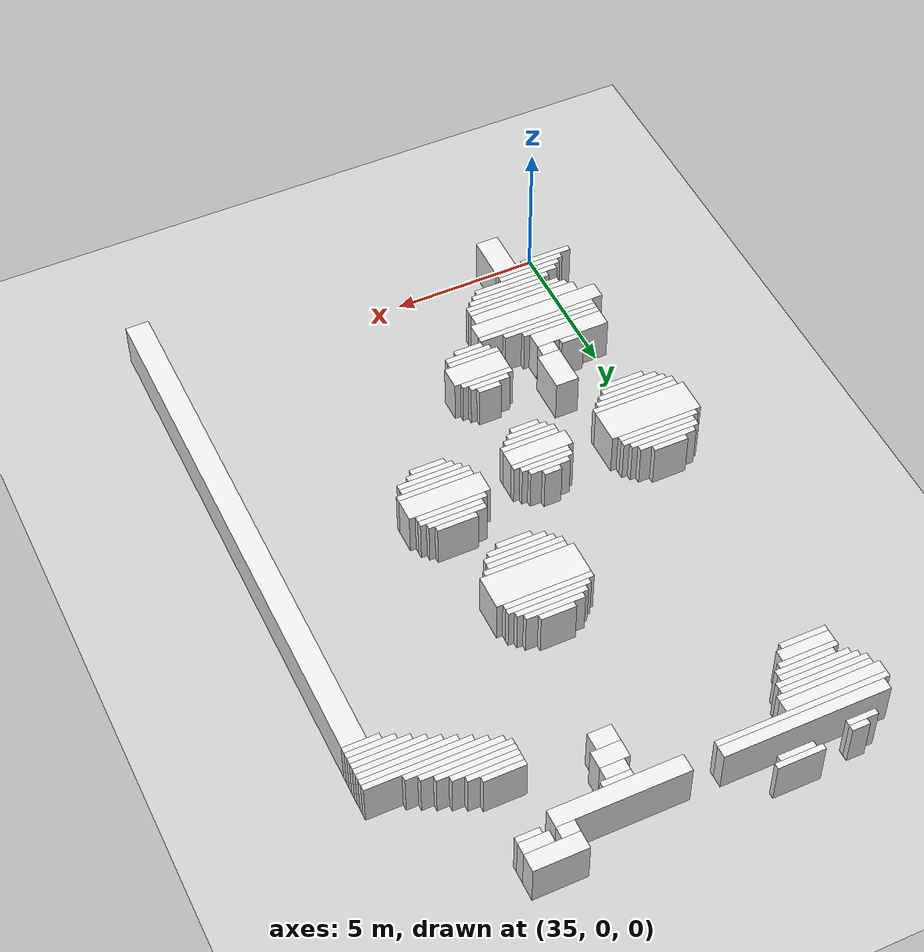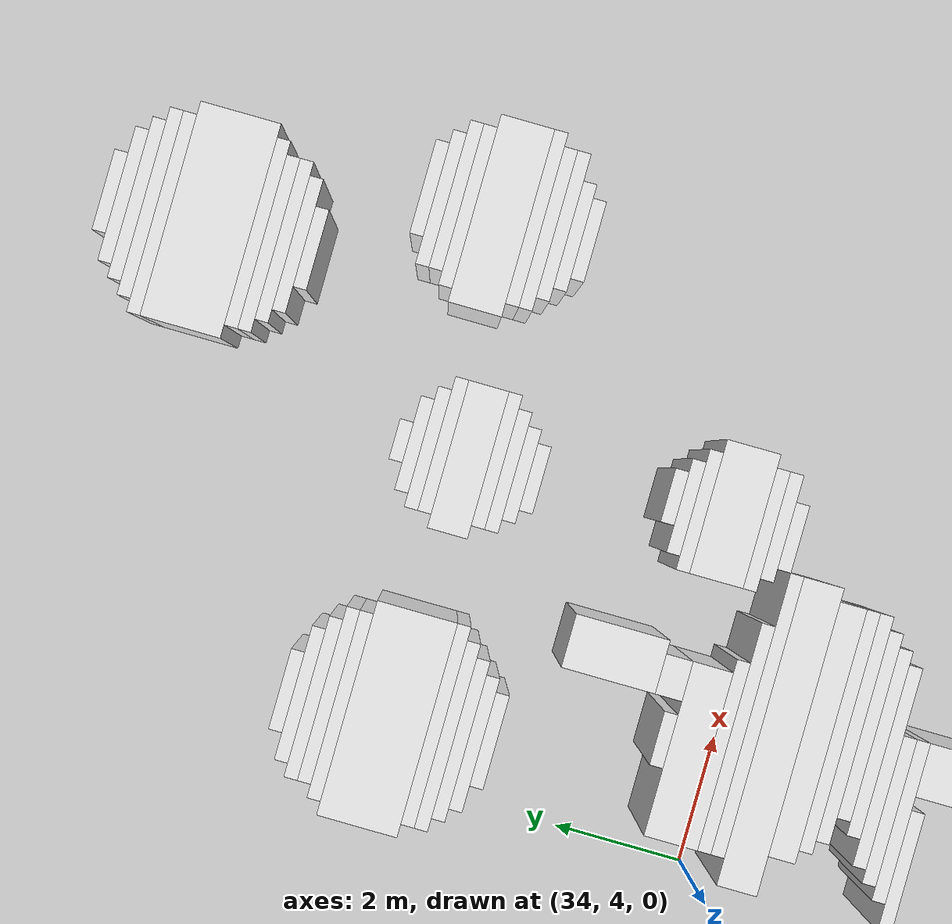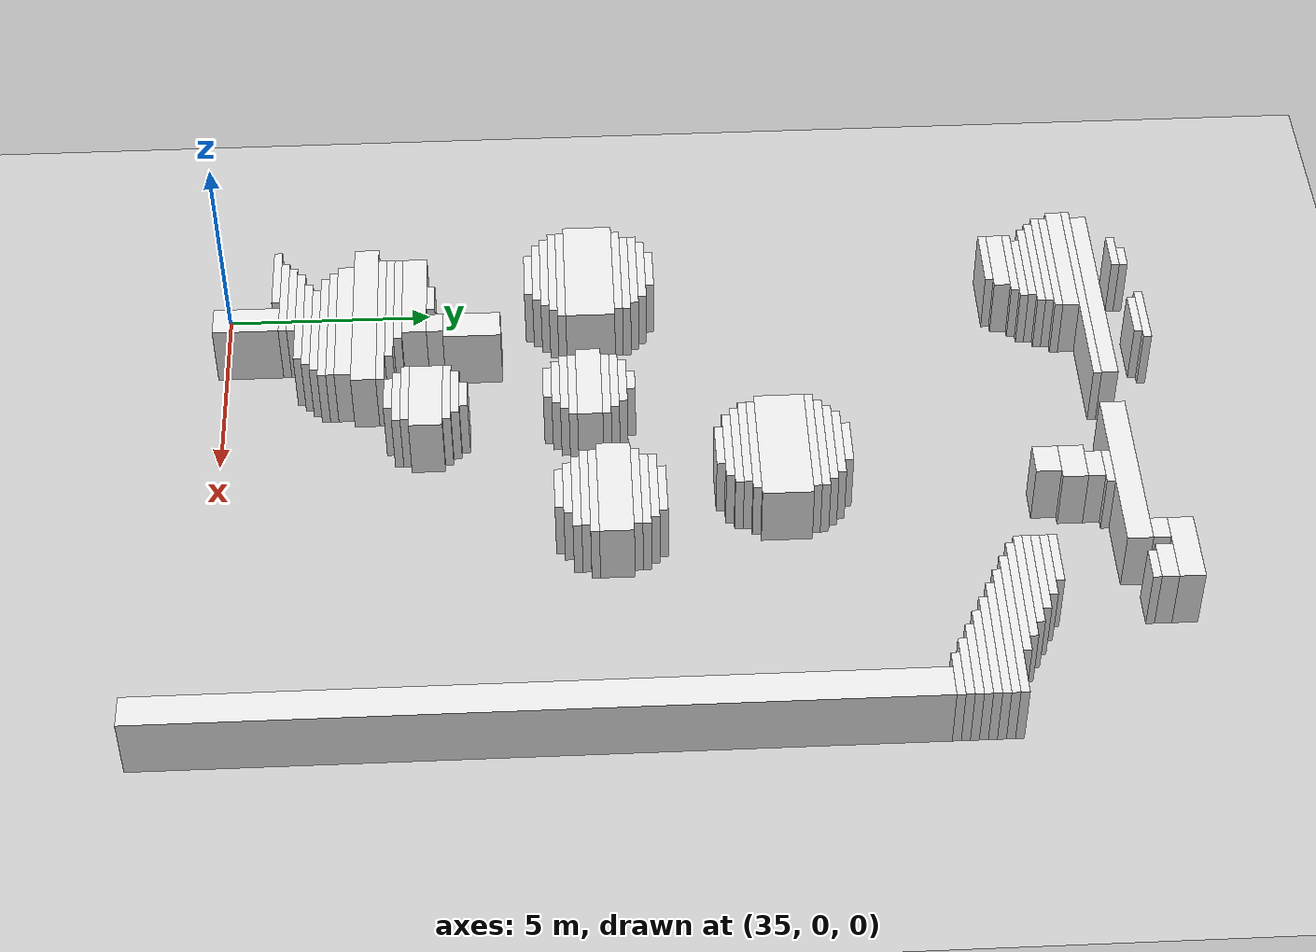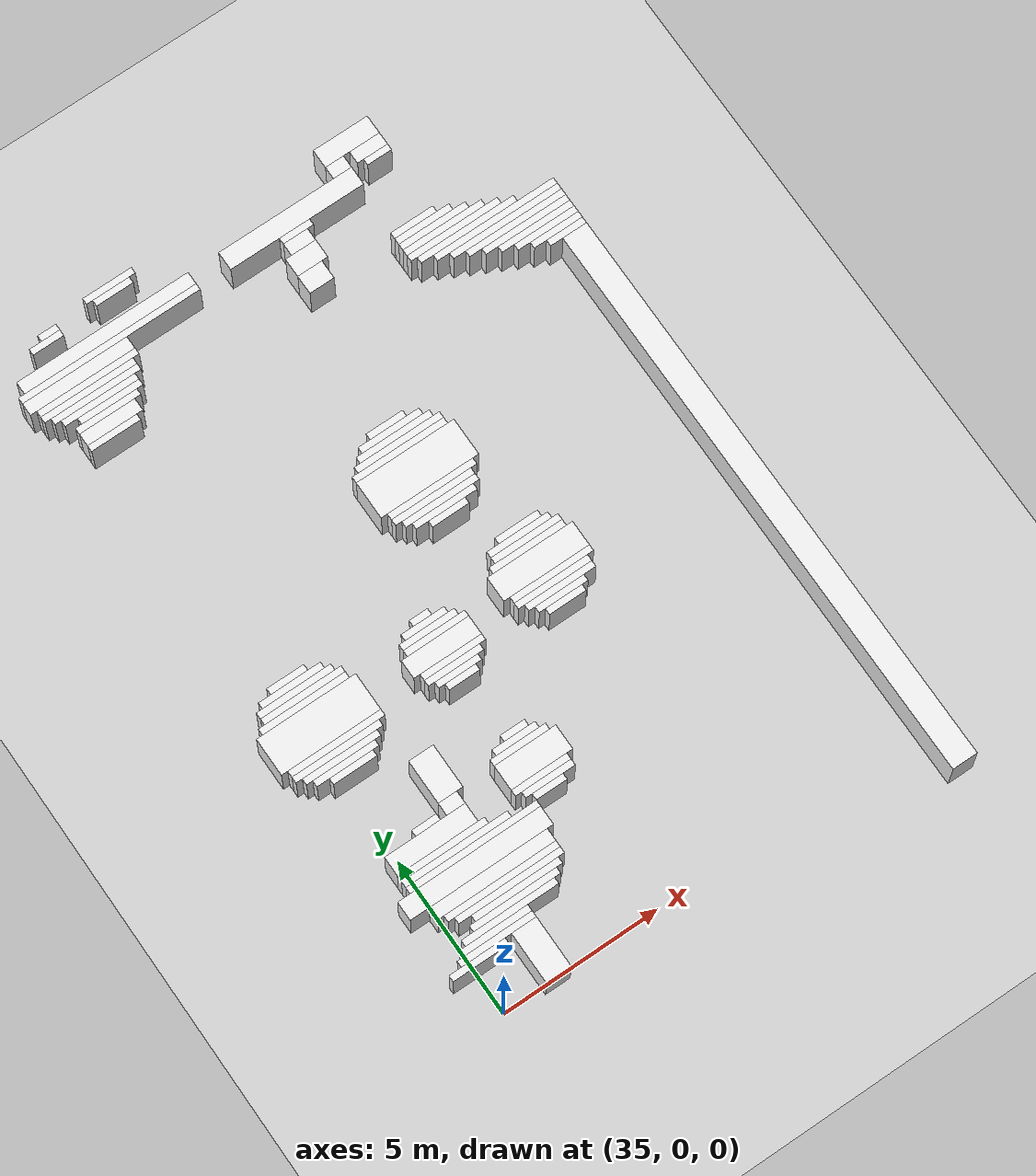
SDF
<sdf version="1.7">
 <world name="default">
  <model name="ground_plane">
   <static>1</static>
   <link name="link">
    <collision name="collision">
     <geometry><plane><normal>0 0 1</normal><size>120 120</size></plane></geometry>
    </collision>
    <visual name="visual">
     <geometry><plane><normal>0 0 1</normal><size>120 120</size></plane></geometry>
     <material>
      <script><uri>file://media/materials/scripts/gazebo.material</uri><name>Gazebo/Grey</name></script>
     </material>
    </visual>
   </link>
  </model>
  <model name="random_complex_02_model">
   <static>1</static>
   <link name="obs_1123">
    <pose>37.4000 22.5000 0.8000 0 0 0</pose>
    <collision name="obs_1123_col"><geometry><box><size>1.6000 0.2000 1.6000</size></box></geometry></collision>
    <visual name="obs_1123_vis">
     <geometry><box><size>1.6000 0.2000 1.6000</size></box></geometry>
     <material>
      <script><uri>file://media/materials/scripts/gazebo.material</uri><name>Gazebo/White</name></script>
     </material>
    </visual>
   </link>
   <link name="obs_1131">
    <pose>35.3000 22.3000 0.8000 0 0 0</pose>
    <collision name="obs_1131_col"><geometry><box><size>0.6000 0.2000 1.6000</size></box></geometry></collision>
    <visual name="obs_1131_vis">
     <geometry><box><size>0.6000 0.2000 1.6000</size></box></geometry>
     <material>
      <script><uri>file://media/materials/scripts/gazebo.material</uri><name>Gazebo/White</name></script>
     </material>
    </visual>
   </link>
   <link name="obs_1132">
    <pose>37.4000 22.3000 0.8000 0 0 0</pose>
    <collision name="obs_1132_col"><geometry><box><size>1.2000 0.2000 1.6000</size></box></geometry></collision>
    <visual name="obs_1132_vis">
     <geometry><box><size>1.2000 0.2000 1.6000</size></box></geometry>
     <material>
      <script><uri>file://media/materials/scripts/gazebo.material</uri><name>Gazebo/White</name></script>
     </material>
    </visual>
   </link>
   <link name="obs_1133">
    <pose>45.1000 22.3000 0.8000 0 0 0</pose>
    <collision name="obs_1133_col"><geometry><box><size>1.8000 0.6000 1.6000</size></box></geometry></collision>
    <visual name="obs_1133_vis">
     <geometry><box><size>1.8000 0.6000 1.6000</size></box></geometry>
     <material>
      <script><uri>file://media/materials/scripts/gazebo.material</uri><name>Gazebo/White</name></script>
     </material>
    </visual>
   </link>
   <link name="obs_1138">
    <pose>35.1000 22.1000 0.8000 0 0 0</pose>
    <collision name="obs_1138_col"><geometry><box><size>1.0000 0.2000 1.6000</size></box></geometry></collision>
    <visual name="obs_1138_vis">
     <geometry><box><size>1.0000 0.2000 1.6000</size></box></geometry>
     <material>
      <script><uri>file://media/materials/scripts/gazebo.material</uri><name>Gazebo/White</name></script>
     </material>
    </visual>
   </link>
   <link name="obs_1148">
    <pose>44.5000 21.8000 0.8000 0 0 0</pose>
    <collision name="obs_1148_col"><geometry><box><size>0.6000 0.4000 1.6000</size></box></geometry></collision>
    <visual name="obs_1148_vis">
     <geometry><box><size>0.6000 0.4000 1.6000</size></box></geometry>
     <material>
      <script><uri>file://media/materials/scripts/gazebo.material</uri><name>Gazebo/White</name></script>
     </material>
    </visual>
   </link>
   <link name="obs_1149">
    <pose>45.5000 21.8000 0.8000 0 0 0</pose>
    <collision name="obs_1149_col"><geometry><box><size>1.0000 0.4000 1.6000</size></box></geometry></collision>
    <visual name="obs_1149_vis">
     <geometry><box><size>1.0000 0.4000 1.6000</size></box></geometry>
     <material>
      <script><uri>file://media/materials/scripts/gazebo.material</uri><name>Gazebo/White</name></script>
     </material>
    </visual>
   </link>
   <link name="obs_1162">
    <pose>45.6000 21.5000 0.8000 0 0 0</pose>
    <collision name="obs_1162_col"><geometry><box><size>0.8000 0.2000 1.6000</size></box></geometry></collision>
    <visual name="obs_1162_vis">
     <geometry><box><size>0.8000 0.2000 1.6000</size></box></geometry>
     <material>
      <script><uri>file://media/materials/scripts/gazebo.material</uri><name>Gazebo/White</name></script>
     </material>
    </visual>
   </link>
   <link name="obs_1163">
    <pose>36.6000 21.4000 0.8000 0 0 0</pose>
    <collision name="obs_1163_col"><geometry><box><size>5.6000 0.4000 1.6000</size></box></geometry></collision>
    <visual name="obs_1163_vis">
     <geometry><box><size>5.6000 0.4000 1.6000</size></box></geometry>
     <material>
      <script><uri>file://media/materials/scripts/gazebo.material</uri><name>Gazebo/White</name></script>
     </material>
    </visual>
   </link>
   <link name="obs_1171">
    <pose>42.6000 21.3000 0.8000 0 0 0</pose>
    <collision name="obs_1171_col"><geometry><box><size>4.4000 0.6000 1.6000</size></box></geometry></collision>
    <visual name="obs_1171_vis">
     <geometry><box><size>4.4000 0.6000 1.6000</size></box></geometry>
     <material>
      <script><uri>file://media/materials/scripts/gazebo.material</uri><name>Gazebo/White</name></script>
     </material>
    </visual>
   </link>
   <link name="obs_1180">
    <pose>36.5000 21.1000 0.8000 0 0 0</pose>
    <collision name="obs_1180_col"><geometry><box><size>5.8000 0.2000 1.6000</size></box></geometry></collision>
    <visual name="obs_1180_vis">
     <geometry><box><size>5.8000 0.2000 1.6000</size></box></geometry>
     <material>
      <script><uri>file://media/materials/scripts/gazebo.material</uri><name>Gazebo/White</name></script>
     </material>
    </visual>
   </link>
   <link name="obs_1190">
    <pose>42.5000 20.9000 0.8000 0 0 0</pose>
    <collision name="obs_1190_col"><geometry><box><size>1.0000 0.2000 1.6000</size></box></geometry></collision>
    <visual name="obs_1190_vis">
     <geometry><box><size>1.0000 0.2000 1.6000</size></box></geometry>
     <material>
      <script><uri>file://media/materials/scripts/gazebo.material</uri><name>Gazebo/White</name></script>
     </material>
    </visual>
   </link>
   <link name="obs_1192">
    <pose>35.3000 20.8000 0.8000 0 0 0</pose>
    <collision name="obs_1192_col"><geometry><box><size>3.4000 0.4000 1.6000</size></box></geometry></collision>
    <visual name="obs_1192_vis">
     <geometry><box><size>3.4000 0.4000 1.6000</size></box></geometry>
     <material>
      <script><uri>file://media/materials/scripts/gazebo.material</uri><name>Gazebo/White</name></script>
     </material>
    </visual>
   </link>
   <link name="obs_1201">
    <pose>42.4000 20.6000 0.8000 0 0 0</pose>
    <collision name="obs_1201_col"><geometry><box><size>0.8000 0.4000 1.6000</size></box></geometry></collision>
    <visual name="obs_1201_vis">
     <geometry><box><size>0.8000 0.4000 1.6000</size></box></geometry>
     <material>
      <script><uri>file://media/materials/scripts/gazebo.material</uri><name>Gazebo/White</name></script>
     </material>
    </visual>
   </link>
   <link name="obs_1207">
    <pose>35.4000 20.5000 0.8000 0 0 0</pose>
    <collision name="obs_1207_col"><geometry><box><size>3.2000 0.2000 1.6000</size></box></geometry></collision>
    <visual name="obs_1207_vis">
     <geometry><box><size>3.2000 0.2000 1.6000</size></box></geometry>
     <material>
      <script><uri>file://media/materials/scripts/gazebo.material</uri><name>Gazebo/White</name></script>
     </material>
    </visual>
   </link>
   <link name="obs_1217">
    <pose>35.3000 20.3000 0.8000 0 0 0</pose>
    <collision name="obs_1217_col"><geometry><box><size>3.0000 0.2000 1.6000</size></box></geometry></collision>
    <visual name="obs_1217_vis">
     <geometry><box><size>3.0000 0.2000 1.6000</size></box></geometry>
     <material>
      <script><uri>file://media/materials/scripts/gazebo.material</uri><name>Gazebo/White</name></script>
     </material>
    </visual>
   </link>
   <link name="obs_1225">
    <pose>35.4000 20.1000 0.8000 0 0 0</pose>
    <collision name="obs_1225_col"><geometry><box><size>2.8000 0.2000 1.6000</size></box></geometry></collision>
    <visual name="obs_1225_vis">
     <geometry><box><size>2.8000 0.2000 1.6000</size></box></geometry>
     <material>
      <script><uri>file://media/materials/scripts/gazebo.material</uri><name>Gazebo/White</name></script>
     </material>
    </visual>
   </link>
   <link name="obs_1226">
    <pose>42.3000 20.1000 0.8000 0 0 0</pose>
    <collision name="obs_1226_col"><geometry><box><size>1.0000 0.6000 1.6000</size></box></geometry></collision>
    <visual name="obs_1226_vis">
     <geometry><box><size>1.0000 0.6000 1.6000</size></box></geometry>
     <material>
      <script><uri>file://media/materials/scripts/gazebo.material</uri><name>Gazebo/White</name></script>
     </material>
    </visual>
   </link>
   <link name="obs_1232">
    <pose>35.4000 19.9000 0.8000 0 0 0</pose>
    <collision name="obs_1232_col"><geometry><box><size>2.4000 0.2000 1.6000</size></box></geometry></collision>
    <visual name="obs_1232_vis">
     <geometry><box><size>2.4000 0.2000 1.6000</size></box></geometry>
     <material>
      <script><uri>file://media/materials/scripts/gazebo.material</uri><name>Gazebo/White</name></script>
     </material>
    </visual>
   </link>
   <link name="obs_1237">
    <pose>35.6000 19.7000 0.8000 0 0 0</pose>
    <collision name="obs_1237_col"><geometry><box><size>2.0000 0.2000 1.6000</size></box></geometry></collision>
    <visual name="obs_1237_vis">
     <geometry><box><size>2.0000 0.2000 1.6000</size></box></geometry>
     <material>
      <script><uri>file://media/materials/scripts/gazebo.material</uri><name>Gazebo/White</name></script>
     </material>
    </visual>
   </link>
   <link name="obs_1241">
    <pose>35.4000 19.5000 0.8000 0 0 0</pose>
    <collision name="obs_1241_col"><geometry><box><size>2.0000 0.2000 1.6000</size></box></geometry></collision>
    <visual name="obs_1241_vis">
     <geometry><box><size>2.0000 0.2000 1.6000</size></box></geometry>
     <material>
      <script><uri>file://media/materials/scripts/gazebo.material</uri><name>Gazebo/White</name></script>
     </material>
    </visual>
   </link>
   <link name="obs_1245">
    <pose>42.2000 19.5000 0.8000 0 0 0</pose>
    <collision name="obs_1245_col"><geometry><box><size>0.8000 0.6000 1.6000</size></box></geometry></collision>
    <visual name="obs_1245_vis">
     <geometry><box><size>0.8000 0.6000 1.6000</size></box></geometry>
     <material>
      <script><uri>file://media/materials/scripts/gazebo.material</uri><name>Gazebo/White</name></script>
     </material>
    </visual>
   </link>
   <link name="obs_1250">
    <pose>45.3000 19.3000 0.8000 0 0 0</pose>
    <collision name="obs_1250_col"><geometry><box><size>1.4000 0.2000 1.6000</size></box></geometry></collision>
    <visual name="obs_1250_vis">
     <geometry><box><size>1.4000 0.2000 1.6000</size></box></geometry>
     <material>
      <script><uri>file://media/materials/scripts/gazebo.material</uri><name>Gazebo/White</name></script>
     </material>
    </visual>
   </link>
   <link name="obs_1254">
    <pose>35.3000 19.2000 0.8000 0 0 0</pose>
    <collision name="obs_1254_col"><geometry><box><size>1.8000 0.4000 1.6000</size></box></geometry></collision>
    <visual name="obs_1254_vis">
     <geometry><box><size>1.8000 0.4000 1.6000</size></box></geometry>
     <material>
      <script><uri>file://media/materials/scripts/gazebo.material</uri><name>Gazebo/White</name></script>
     </material>
    </visual>
   </link>
   <link name="obs_1261">
    <pose>45.5000 19.1000 0.8000 0 0 0</pose>
    <collision name="obs_1261_col"><geometry><box><size>1.8000 0.2000 1.6000</size></box></geometry></collision>
    <visual name="obs_1261_vis">
     <geometry><box><size>1.8000 0.2000 1.6000</size></box></geometry>
     <material>
      <script><uri>file://media/materials/scripts/gazebo.material</uri><name>Gazebo/White</name></script>
     </material>
    </visual>
   </link>
   <link name="obs_1269">
    <pose>35.2000 18.9000 0.8000 0 0 0</pose>
    <collision name="obs_1269_col"><geometry><box><size>1.6000 0.2000 1.6000</size></box></geometry></collision>
    <visual name="obs_1269_vis">
     <geometry><box><size>1.6000 0.2000 1.6000</size></box></geometry>
     <material>
      <script><uri>file://media/materials/scripts/gazebo.material</uri><name>Gazebo/White</name></script>
     </material>
    </visual>
   </link>
   <link name="obs_1270">
    <pose>45.7000 18.9000 0.8000 0 0 0</pose>
    <collision name="obs_1270_col"><geometry><box><size>2.2000 0.2000 1.6000</size></box></geometry></collision>
    <visual name="obs_1270_vis">
     <geometry><box><size>2.2000 0.2000 1.6000</size></box></geometry>
     <material>
      <script><uri>file://media/materials/scripts/gazebo.material</uri><name>Gazebo/White</name></script>
     </material>
    </visual>
   </link>
   <link name="obs_1284">
    <pose>45.9000 18.7000 0.8000 0 0 0</pose>
    <collision name="obs_1284_col"><geometry><box><size>2.6000 0.2000 1.6000</size></box></geometry></collision>
    <visual name="obs_1284_vis">
     <geometry><box><size>2.6000 0.2000 1.6000</size></box></geometry>
     <material>
      <script><uri>file://media/materials/scripts/gazebo.material</uri><name>Gazebo/White</name></script>
     </material>
    </visual>
   </link>
   <link name="obs_1292">
    <pose>46.1000 18.5000 0.8000 0 0 0</pose>
    <collision name="obs_1292_col"><geometry><box><size>3.0000 0.2000 1.6000</size></box></geometry></collision>
    <visual name="obs_1292_vis">
     <geometry><box><size>3.0000 0.2000 1.6000</size></box></geometry>
     <material>
      <script><uri>file://media/materials/scripts/gazebo.material</uri><name>Gazebo/White</name></script>
     </material>
    </visual>
   </link>
   <link name="obs_1297">
    <pose>46.4000 18.3000 0.8000 0 0 0</pose>
    <collision name="obs_1297_col"><geometry><box><size>3.2000 0.2000 1.6000</size></box></geometry></collision>
    <visual name="obs_1297_vis">
     <geometry><box><size>3.2000 0.2000 1.6000</size></box></geometry>
     <material>
      <script><uri>file://media/materials/scripts/gazebo.material</uri><name>Gazebo/White</name></script>
     </material>
    </visual>
   </link>
   <link name="obs_1301">
    <pose>47.2000 18.1000 0.8000 0 0 0</pose>
    <collision name="obs_1301_col"><geometry><box><size>4.0000 0.2000 1.6000</size></box></geometry></collision>
    <visual name="obs_1301_vis">
     <geometry><box><size>4.0000 0.2000 1.6000</size></box></geometry>
     <material>
      <script><uri>file://media/materials/scripts/gazebo.material</uri><name>Gazebo/White</name></script>
     </material>
    </visual>
   </link>
   <link name="obs_1303">
    <pose>47.4000 17.9000 0.8000 0 0 0</pose>
    <collision name="obs_1303_col"><geometry><box><size>3.6000 0.2000 1.6000</size></box></geometry></collision>
    <visual name="obs_1303_vis">
     <geometry><box><size>3.6000 0.2000 1.6000</size></box></geometry>
     <material>
      <script><uri>file://media/materials/scripts/gazebo.material</uri><name>Gazebo/White</name></script>
     </material>
    </visual>
   </link>
   <link name="obs_1305">
    <pose>47.6000 17.7000 0.8000 0 0 0</pose>
    <collision name="obs_1305_col"><geometry><box><size>3.2000 0.2000 1.6000</size></box></geometry></collision>
    <visual name="obs_1305_vis">
     <geometry><box><size>3.2000 0.2000 1.6000</size></box></geometry>
     <material>
      <script><uri>file://media/materials/scripts/gazebo.material</uri><name>Gazebo/White</name></script>
     </material>
    </visual>
   </link>
   <link name="obs_1308">
    <pose>47.8000 17.5000 0.8000 0 0 0</pose>
    <collision name="obs_1308_col"><geometry><box><size>2.8000 0.2000 1.6000</size></box></geometry></collision>
    <visual name="obs_1308_vis">
     <geometry><box><size>2.8000 0.2000 1.6000</size></box></geometry>
     <material>
      <script><uri>file://media/materials/scripts/gazebo.material</uri><name>Gazebo/White</name></script>
     </material>
    </visual>
   </link>
   <link name="obs_1310">
    <pose>48.0000 17.3000 0.8000 0 0 0</pose>
    <collision name="obs_1310_col"><geometry><box><size>2.4000 0.2000 1.6000</size></box></geometry></collision>
    <visual name="obs_1310_vis">
     <geometry><box><size>2.4000 0.2000 1.6000</size></box></geometry>
     <material>
      <script><uri>file://media/materials/scripts/gazebo.material</uri><name>Gazebo/White</name></script>
     </material>
    </visual>
   </link>
   <link name="obs_1317">
    <pose>48.2000 17.1000 0.8000 0 0 0</pose>
    <collision name="obs_1317_col"><geometry><box><size>2.0000 0.2000 1.6000</size></box></geometry></collision>
    <visual name="obs_1317_vis">
     <geometry><box><size>2.0000 0.2000 1.6000</size></box></geometry>
     <material>
      <script><uri>file://media/materials/scripts/gazebo.material</uri><name>Gazebo/White</name></script>
     </material>
    </visual>
   </link>
   <link name="obs_1324">
    <pose>48.4000 16.9000 0.8000 0 0 0</pose>
    <collision name="obs_1324_col"><geometry><box><size>1.6000 0.2000 1.6000</size></box></geometry></collision>
    <visual name="obs_1324_vis">
     <geometry><box><size>1.6000 0.2000 1.6000</size></box></geometry>
     <material>
      <script><uri>file://media/materials/scripts/gazebo.material</uri><name>Gazebo/White</name></script>
     </material>
    </visual>
   </link>
   <link name="obs_1331">
    <pose>48.6000 16.7000 0.8000 0 0 0</pose>
    <collision name="obs_1331_col"><geometry><box><size>1.2000 0.2000 1.6000</size></box></geometry></collision>
    <visual name="obs_1331_vis">
     <geometry><box><size>1.2000 0.2000 1.6000</size></box></geometry>
     <material>
      <script><uri>file://media/materials/scripts/gazebo.material</uri><name>Gazebo/White</name></script>
     </material>
    </visual>
   </link>
   <link name="obs_1385">
    <pose>41.4000 14.9000 0.8000 0 0 0</pose>
    <collision name="obs_1385_col"><geometry><box><size>1.2000 0.2000 1.6000</size></box></geometry></collision>
    <visual name="obs_1385_vis">
     <geometry><box><size>1.2000 0.2000 1.6000</size></box></geometry>
     <material>
      <script><uri>file://media/materials/scripts/gazebo.material</uri><name>Gazebo/White</name></script>
     </material>
    </visual>
   </link>
   <link name="obs_1391">
    <pose>41.4000 14.7000 0.8000 0 0 0</pose>
    <collision name="obs_1391_col"><geometry><box><size>2.0000 0.2000 1.6000</size></box></geometry></collision>
    <visual name="obs_1391_vis">
     <geometry><box><size>2.0000 0.2000 1.6000</size></box></geometry>
     <material>
      <script><uri>file://media/materials/scripts/gazebo.material</uri><name>Gazebo/White</name></script>
     </material>
    </visual>
   </link>
   <link name="obs_1397">
    <pose>41.4000 14.5000 0.8000 0 0 0</pose>
    <collision name="obs_1397_col"><geometry><box><size>2.4000 0.2000 1.6000</size></box></geometry></collision>
    <visual name="obs_1397_vis">
     <geometry><box><size>2.4000 0.2000 1.6000</size></box></geometry>
     <material>
      <script><uri>file://media/materials/scripts/gazebo.material</uri><name>Gazebo/White</name></script>
     </material>
    </visual>
   </link>
   <link name="obs_1405">
    <pose>41.4000 14.3000 0.8000 0 0 0</pose>
    <collision name="obs_1405_col"><geometry><box><size>2.8000 0.2000 1.6000</size></box></geometry></collision>
    <visual name="obs_1405_vis">
     <geometry><box><size>2.8000 0.2000 1.6000</size></box></geometry>
     <material>
      <script><uri>file://media/materials/scripts/gazebo.material</uri><name>Gazebo/White</name></script>
     </material>
    </visual>
   </link>
   <link name="obs_1411">
    <pose>41.3000 14.1000 0.8000 0 0 0</pose>
    <collision name="obs_1411_col"><geometry><box><size>3.0000 0.2000 1.6000</size></box></geometry></collision>
    <visual name="obs_1411_vis">
     <geometry><box><size>3.0000 0.2000 1.6000</size></box></geometry>
     <material>
      <script><uri>file://media/materials/scripts/gazebo.material</uri><name>Gazebo/White</name></script>
     </material>
    </visual>
   </link>
   <link name="obs_1443">
    <pose>41.4000 13.4000 0.8000 0 0 0</pose>
    <collision name="obs_1443_col"><geometry><box><size>3.2000 1.2000 1.6000</size></box></geometry></collision>
    <visual name="obs_1443_vis">
     <geometry><box><size>3.2000 1.2000 1.6000</size></box></geometry>
     <material>
      <script><uri>file://media/materials/scripts/gazebo.material</uri><name>Gazebo/White</name></script>
     </material>
    </visual>
   </link>
   <link name="obs_1451">
    <pose>41.4000 12.7000 0.8000 0 0 0</pose>
    <collision name="obs_1451_col"><geometry><box><size>2.8000 0.2000 1.6000</size></box></geometry></collision>
    <visual name="obs_1451_vis">
     <geometry><box><size>2.8000 0.2000 1.6000</size></box></geometry>
     <material>
      <script><uri>file://media/materials/scripts/gazebo.material</uri><name>Gazebo/White</name></script>
     </material>
    </visual>
   </link>
   <link name="obs_1457">
    <pose>41.3000 12.5000 0.8000 0 0 0</pose>
    <collision name="obs_1457_col"><geometry><box><size>2.6000 0.2000 1.6000</size></box></geometry></collision>
    <visual name="obs_1457_vis">
     <geometry><box><size>2.6000 0.2000 1.6000</size></box></geometry>
     <material>
      <script><uri>file://media/materials/scripts/gazebo.material</uri><name>Gazebo/White</name></script>
     </material>
    </visual>
   </link>
   <link name="obs_1464">
    <pose>41.4000 12.3000 0.8000 0 0 0</pose>
    <collision name="obs_1464_col"><geometry><box><size>2.4000 0.2000 1.6000</size></box></geometry></collision>
    <visual name="obs_1464_vis">
     <geometry><box><size>2.4000 0.2000 1.6000</size></box></geometry>
     <material>
      <script><uri>file://media/materials/scripts/gazebo.material</uri><name>Gazebo/White</name></script>
     </material>
    </visual>
   </link>
   <link name="obs_1475">
    <pose>41.4000 12.1000 0.8000 0 0 0</pose>
    <collision name="obs_1475_col"><geometry><box><size>2.0000 0.2000 1.6000</size></box></geometry></collision>
    <visual name="obs_1475_vis">
     <geometry><box><size>2.0000 0.2000 1.6000</size></box></geometry>
     <material>
      <script><uri>file://media/materials/scripts/gazebo.material</uri><name>Gazebo/White</name></script>
     </material>
    </visual>
   </link>
   <link name="obs_1485">
    <pose>41.4000 11.9000 0.8000 0 0 0</pose>
    <collision name="obs_1485_col"><geometry><box><size>1.2000 0.2000 1.6000</size></box></geometry></collision>
    <visual name="obs_1485_vis">
     <geometry><box><size>1.2000 0.2000 1.6000</size></box></geometry>
     <material>
      <script><uri>file://media/materials/scripts/gazebo.material</uri><name>Gazebo/White</name></script>
     </material>
    </visual>
   </link>
   <link name="obs_1522">
    <pose>35.2000 10.5000 0.8000 0 0 0</pose>
    <collision name="obs_1522_col"><geometry><box><size>1.2000 0.2000 1.6000</size></box></geometry></collision>
    <visual name="obs_1522_vis">
     <geometry><box><size>1.2000 0.2000 1.6000</size></box></geometry>
     <material>
      <script><uri>file://media/materials/scripts/gazebo.material</uri><name>Gazebo/White</name></script>
     </material>
    </visual>
   </link>
   <link name="obs_1523">
    <pose>42.7000 10.5000 0.8000 0 0 0</pose>
    <collision name="obs_1523_col"><geometry><box><size>1.4000 0.2000 1.6000</size></box></geometry></collision>
    <visual name="obs_1523_vis">
     <geometry><box><size>1.4000 0.2000 1.6000</size></box></geometry>
     <material>
      <script><uri>file://media/materials/scripts/gazebo.material</uri><name>Gazebo/White</name></script>
     </material>
    </visual>
   </link>
   <link name="obs_1530">
    <pose>35.2000 10.3000 0.8000 0 0 0</pose>
    <collision name="obs_1530_col"><geometry><box><size>2.0000 0.2000 1.6000</size></box></geometry></collision>
    <visual name="obs_1530_vis">
     <geometry><box><size>2.0000 0.2000 1.6000</size></box></geometry>
     <material>
      <script><uri>file://media/materials/scripts/gazebo.material</uri><name>Gazebo/White</name></script>
     </material>
    </visual>
   </link>
   <link name="obs_1531">
    <pose>42.6000 10.3000 0.8000 0 0 0</pose>
    <collision name="obs_1531_col"><geometry><box><size>2.0000 0.2000 1.6000</size></box></geometry></collision>
    <visual name="obs_1531_vis">
     <geometry><box><size>2.0000 0.2000 1.6000</size></box></geometry>
     <material>
      <script><uri>file://media/materials/scripts/gazebo.material</uri><name>Gazebo/White</name></script>
     </material>
    </visual>
   </link>
   <link name="obs_1537">
    <pose>35.2000 10.1000 0.8000 0 0 0</pose>
    <collision name="obs_1537_col"><geometry><box><size>2.4000 0.2000 1.6000</size></box></geometry></collision>
    <visual name="obs_1537_vis">
     <geometry><box><size>2.4000 0.2000 1.6000</size></box></geometry>
     <material>
      <script><uri>file://media/materials/scripts/gazebo.material</uri><name>Gazebo/White</name></script>
     </material>
    </visual>
   </link>
   <link name="obs_1538">
    <pose>42.7000 10.1000 0.8000 0 0 0</pose>
    <collision name="obs_1538_col"><geometry><box><size>2.2000 0.2000 1.6000</size></box></geometry></collision>
    <visual name="obs_1538_vis">
     <geometry><box><size>2.2000 0.2000 1.6000</size></box></geometry>
     <material>
      <script><uri>file://media/materials/scripts/gazebo.material</uri><name>Gazebo/White</name></script>
     </material>
    </visual>
   </link>
   <link name="obs_1545">
    <pose>35.3000 9.9000 0.8000 0 0 0</pose>
    <collision name="obs_1545_col"><geometry><box><size>2.6000 0.2000 1.6000</size></box></geometry></collision>
    <visual name="obs_1545_vis">
     <geometry><box><size>2.6000 0.2000 1.6000</size></box></geometry>
     <material>
      <script><uri>file://media/materials/scripts/gazebo.material</uri><name>Gazebo/White</name></script>
     </material>
    </visual>
   </link>
   <link name="obs_1546">
    <pose>39.1000 9.9000 0.8000 0 0 0</pose>
    <collision name="obs_1546_col"><geometry><box><size>0.6000 0.2000 1.6000</size></box></geometry></collision>
    <visual name="obs_1546_vis">
     <geometry><box><size>0.6000 0.2000 1.6000</size></box></geometry>
     <material>
      <script><uri>file://media/materials/scripts/gazebo.material</uri><name>Gazebo/White</name></script>
     </material>
    </visual>
   </link>
   <link name="obs_1547">
    <pose>42.6000 9.9000 0.8000 0 0 0</pose>
    <collision name="obs_1547_col"><geometry><box><size>2.4000 0.2000 1.6000</size></box></geometry></collision>
    <visual name="obs_1547_vis">
     <geometry><box><size>2.4000 0.2000 1.6000</size></box></geometry>
     <material>
      <script><uri>file://media/materials/scripts/gazebo.material</uri><name>Gazebo/White</name></script>
     </material>
    </visual>
   </link>
   <link name="obs_1558">
    <pose>35.2000 9.7000 0.8000 0 0 0</pose>
    <collision name="obs_1558_col"><geometry><box><size>2.8000 0.2000 1.6000</size></box></geometry></collision>
    <visual name="obs_1558_vis">
     <geometry><box><size>2.8000 0.2000 1.6000</size></box></geometry>
     <material>
      <script><uri>file://media/materials/scripts/gazebo.material</uri><name>Gazebo/White</name></script>
     </material>
    </visual>
   </link>
   <link name="obs_1559">
    <pose>39.1000 9.7000 0.8000 0 0 0</pose>
    <collision name="obs_1559_col"><geometry><box><size>1.4000 0.2000 1.6000</size></box></geometry></collision>
    <visual name="obs_1559_vis">
     <geometry><box><size>1.4000 0.2000 1.6000</size></box></geometry>
     <material>
      <script><uri>file://media/materials/scripts/gazebo.material</uri><name>Gazebo/White</name></script>
     </material>
    </visual>
   </link>
   <link name="obs_1566">
    <pose>39.1000 9.5000 0.8000 0 0 0</pose>
    <collision name="obs_1566_col"><geometry><box><size>1.8000 0.2000 1.6000</size></box></geometry></collision>
    <visual name="obs_1566_vis">
     <geometry><box><size>1.8000 0.2000 1.6000</size></box></geometry>
     <material>
      <script><uri>file://media/materials/scripts/gazebo.material</uri><name>Gazebo/White</name></script>
     </material>
    </visual>
   </link>
   <link name="obs_1573">
    <pose>39.2000 9.3000 0.8000 0 0 0</pose>
    <collision name="obs_1573_col"><geometry><box><size>2.0000 0.2000 1.6000</size></box></geometry></collision>
    <visual name="obs_1573_vis">
     <geometry><box><size>2.0000 0.2000 1.6000</size></box></geometry>
     <material>
      <script><uri>file://media/materials/scripts/gazebo.material</uri><name>Gazebo/White</name></script>
     </material>
    </visual>
   </link>
   <link name="obs_1575">
    <pose>42.6000 9.4000 0.8000 0 0 0</pose>
    <collision name="obs_1575_col"><geometry><box><size>2.8000 0.8000 1.6000</size></box></geometry></collision>
    <visual name="obs_1575_vis">
     <geometry><box><size>2.8000 0.8000 1.6000</size></box></geometry>
     <material>
      <script><uri>file://media/materials/scripts/gazebo.material</uri><name>Gazebo/White</name></script>
     </material>
    </visual>
   </link>
   <link name="obs_1596">
    <pose>42.7000 8.9000 0.8000 0 0 0</pose>
    <collision name="obs_1596_col"><geometry><box><size>2.6000 0.2000 1.6000</size></box></geometry></collision>
    <visual name="obs_1596_vis">
     <geometry><box><size>2.6000 0.2000 1.6000</size></box></geometry>
     <material>
      <script><uri>file://media/materials/scripts/gazebo.material</uri><name>Gazebo/White</name></script>
     </material>
    </visual>
   </link>
   <link name="obs_1597">
    <pose>39.1000 8.9000 0.8000 0 0 0</pose>
    <collision name="obs_1597_col"><geometry><box><size>2.2000 0.6000 1.6000</size></box></geometry></collision>
    <visual name="obs_1597_vis">
     <geometry><box><size>2.2000 0.6000 1.6000</size></box></geometry>
     <material>
      <script><uri>file://media/materials/scripts/gazebo.material</uri><name>Gazebo/White</name></script>
     </material>
    </visual>
   </link>
   <link name="obs_1602">
    <pose>42.6000 8.7000 0.8000 0 0 0</pose>
    <collision name="obs_1602_col"><geometry><box><size>2.4000 0.2000 1.6000</size></box></geometry></collision>
    <visual name="obs_1602_vis">
     <geometry><box><size>2.4000 0.2000 1.6000</size></box></geometry>
     <material>
      <script><uri>file://media/materials/scripts/gazebo.material</uri><name>Gazebo/White</name></script>
     </material>
    </visual>
   </link>
   <link name="obs_1603">
    <pose>35.2000 9.0000 0.8000 0 0 0</pose>
    <collision name="obs_1603_col"><geometry><box><size>3.2000 1.2000 1.6000</size></box></geometry></collision>
    <visual name="obs_1603_vis">
     <geometry><box><size>3.2000 1.2000 1.6000</size></box></geometry>
     <material>
      <script><uri>file://media/materials/scripts/gazebo.material</uri><name>Gazebo/White</name></script>
     </material>
    </visual>
   </link>
   <link name="obs_1610">
    <pose>39.2000 8.5000 0.8000 0 0 0</pose>
    <collision name="obs_1610_col"><geometry><box><size>2.0000 0.2000 1.6000</size></box></geometry></collision>
    <visual name="obs_1610_vis">
     <geometry><box><size>2.0000 0.2000 1.6000</size></box></geometry>
     <material>
      <script><uri>file://media/materials/scripts/gazebo.material</uri><name>Gazebo/White</name></script>
     </material>
    </visual>
   </link>
   <link name="obs_1611">
    <pose>42.7000 8.5000 0.8000 0 0 0</pose>
    <collision name="obs_1611_col"><geometry><box><size>2.2000 0.2000 1.6000</size></box></geometry></collision>
    <visual name="obs_1611_vis">
     <geometry><box><size>2.2000 0.2000 1.6000</size></box></geometry>
     <material>
      <script><uri>file://media/materials/scripts/gazebo.material</uri><name>Gazebo/White</name></script>
     </material>
    </visual>
   </link>
   <link name="obs_1620">
    <pose>35.3000 8.3000 0.8000 0 0 0</pose>
    <collision name="obs_1620_col"><geometry><box><size>3.0000 0.2000 1.6000</size></box></geometry></collision>
    <visual name="obs_1620_vis">
     <geometry><box><size>3.0000 0.2000 1.6000</size></box></geometry>
     <material>
      <script><uri>file://media/materials/scripts/gazebo.material</uri><name>Gazebo/White</name></script>
     </material>
    </visual>
   </link>
   <link name="obs_1621">
    <pose>39.1000 8.3000 0.8000 0 0 0</pose>
    <collision name="obs_1621_col"><geometry><box><size>1.8000 0.2000 1.6000</size></box></geometry></collision>
    <visual name="obs_1621_vis">
     <geometry><box><size>1.8000 0.2000 1.6000</size></box></geometry>
     <material>
      <script><uri>file://media/materials/scripts/gazebo.material</uri><name>Gazebo/White</name></script>
     </material>
    </visual>
   </link>
   <link name="obs_1622">
    <pose>42.6000 8.3000 0.8000 0 0 0</pose>
    <collision name="obs_1622_col"><geometry><box><size>1.6000 0.2000 1.6000</size></box></geometry></collision>
    <visual name="obs_1622_vis">
     <geometry><box><size>1.6000 0.2000 1.6000</size></box></geometry>
     <material>
      <script><uri>file://media/materials/scripts/gazebo.material</uri><name>Gazebo/White</name></script>
     </material>
    </visual>
   </link>
   <link name="obs_1630">
    <pose>35.2000 8.1000 0.8000 0 0 0</pose>
    <collision name="obs_1630_col"><geometry><box><size>2.8000 0.2000 1.6000</size></box></geometry></collision>
    <visual name="obs_1630_vis">
     <geometry><box><size>2.8000 0.2000 1.6000</size></box></geometry>
     <material>
      <script><uri>file://media/materials/scripts/gazebo.material</uri><name>Gazebo/White</name></script>
     </material>
    </visual>
   </link>
   <link name="obs_1631">
    <pose>39.1000 8.1000 0.8000 0 0 0</pose>
    <collision name="obs_1631_col"><geometry><box><size>1.4000 0.2000 1.6000</size></box></geometry></collision>
    <visual name="obs_1631_vis">
     <geometry><box><size>1.4000 0.2000 1.6000</size></box></geometry>
     <material>
      <script><uri>file://media/materials/scripts/gazebo.material</uri><name>Gazebo/White</name></script>
     </material>
    </visual>
   </link>
   <link name="obs_1632">
    <pose>42.6000 8.1000 0.8000 0 0 0</pose>
    <collision name="obs_1632_col"><geometry><box><size>1.2000 0.2000 1.6000</size></box></geometry></collision>
    <visual name="obs_1632_vis">
     <geometry><box><size>1.2000 0.2000 1.6000</size></box></geometry>
     <material>
      <script><uri>file://media/materials/scripts/gazebo.material</uri><name>Gazebo/White</name></script>
     </material>
    </visual>
   </link>
   <link name="obs_1637">
    <pose>35.2000 7.9000 0.8000 0 0 0</pose>
    <collision name="obs_1637_col"><geometry><box><size>2.4000 0.2000 1.6000</size></box></geometry></collision>
    <visual name="obs_1637_vis">
     <geometry><box><size>2.4000 0.2000 1.6000</size></box></geometry>
     <material>
      <script><uri>file://media/materials/scripts/gazebo.material</uri><name>Gazebo/White</name></script>
     </material>
    </visual>
   </link>
   <link name="obs_1638">
    <pose>39.1000 7.9000 0.8000 0 0 0</pose>
    <collision name="obs_1638_col"><geometry><box><size>1.0000 0.2000 1.6000</size></box></geometry></collision>
    <visual name="obs_1638_vis">
     <geometry><box><size>1.0000 0.2000 1.6000</size></box></geometry>
     <material>
      <script><uri>file://media/materials/scripts/gazebo.material</uri><name>Gazebo/White</name></script>
     </material>
    </visual>
   </link>
   <link name="obs_1643">
    <pose>35.2000 7.7000 0.8000 0 0 0</pose>
    <collision name="obs_1643_col"><geometry><box><size>2.0000 0.2000 1.6000</size></box></geometry></collision>
    <visual name="obs_1643_vis">
     <geometry><box><size>2.0000 0.2000 1.6000</size></box></geometry>
     <material>
      <script><uri>file://media/materials/scripts/gazebo.material</uri><name>Gazebo/White</name></script>
     </material>
    </visual>
   </link>
   <link name="obs_1649">
    <pose>35.3000 7.5000 0.8000 0 0 0</pose>
    <collision name="obs_1649_col"><geometry><box><size>1.4000 0.2000 1.6000</size></box></geometry></collision>
    <visual name="obs_1649_vis">
     <geometry><box><size>1.4000 0.2000 1.6000</size></box></geometry>
     <material>
      <script><uri>file://media/materials/scripts/gazebo.material</uri><name>Gazebo/White</name></script>
     </material>
    </visual>
   </link>
   <link name="obs_1703">
    <pose>39.4000 5.9000 0.8000 0 0 0</pose>
    <collision name="obs_1703_col"><geometry><box><size>0.8000 0.2000 1.6000</size></box></geometry></collision>
    <visual name="obs_1703_vis">
     <geometry><box><size>0.8000 0.2000 1.6000</size></box></geometry>
     <material>
      <script><uri>file://media/materials/scripts/gazebo.material</uri><name>Gazebo/White</name></script>
     </material>
    </visual>
   </link>
   <link name="obs_1711">
    <pose>39.3000 5.7000 0.8000 0 0 0</pose>
    <collision name="obs_1711_col"><geometry><box><size>1.4000 0.2000 1.6000</size></box></geometry></collision>
    <visual name="obs_1711_vis">
     <geometry><box><size>1.4000 0.2000 1.6000</size></box></geometry>
     <material>
      <script><uri>file://media/materials/scripts/gazebo.material</uri><name>Gazebo/White</name></script>
     </material>
    </visual>
   </link>
   <link name="obs_1713">
    <pose>37.0000 6.1000 0.8000 0 0 0</pose>
    <collision name="obs_1713_col"><geometry><box><size>0.8000 1.4000 1.6000</size></box></geometry></collision>
    <visual name="obs_1713_vis">
     <geometry><box><size>0.8000 1.4000 1.6000</size></box></geometry>
     <material>
      <script><uri>file://media/materials/scripts/gazebo.material</uri><name>Gazebo/White</name></script>
     </material>
    </visual>
   </link>
   <link name="obs_1723">
    <pose>39.3000 5.5000 0.8000 0 0 0</pose>
    <collision name="obs_1723_col"><geometry><box><size>1.8000 0.2000 1.6000</size></box></geometry></collision>
    <visual name="obs_1723_vis">
     <geometry><box><size>1.8000 0.2000 1.6000</size></box></geometry>
     <material>
      <script><uri>file://media/materials/scripts/gazebo.material</uri><name>Gazebo/White</name></script>
     </material>
    </visual>
   </link>
   <link name="obs_1736">
    <pose>36.9000 5.2000 0.8000 0 0 0</pose>
    <collision name="obs_1736_col"><geometry><box><size>0.6000 0.4000 1.6000</size></box></geometry></collision>
    <visual name="obs_1736_vis">
     <geometry><box><size>0.6000 0.4000 1.6000</size></box></geometry>
     <material>
      <script><uri>file://media/materials/scripts/gazebo.material</uri><name>Gazebo/White</name></script>
     </material>
    </visual>
   </link>
   <link name="obs_1746">
    <pose>36.0000 5.1000 0.8000 0 0 0</pose>
    <collision name="obs_1746_col"><geometry><box><size>0.8000 0.2000 1.6000</size></box></geometry></collision>
    <visual name="obs_1746_vis">
     <geometry><box><size>0.8000 0.2000 1.6000</size></box></geometry>
     <material>
      <script><uri>file://media/materials/scripts/gazebo.material</uri><name>Gazebo/White</name></script>
     </material>
    </visual>
   </link>
   <link name="obs_1754">
    <pose>39.4000 5.0000 0.8000 0 0 0</pose>
    <collision name="obs_1754_col"><geometry><box><size>2.0000 0.8000 1.6000</size></box></geometry></collision>
    <visual name="obs_1754_vis">
     <geometry><box><size>2.0000 0.8000 1.6000</size></box></geometry>
     <material>
      <script><uri>file://media/materials/scripts/gazebo.material</uri><name>Gazebo/White</name></script>
     </material>
    </visual>
   </link>
   <link name="obs_1763">
    <pose>35.9000 4.7000 0.8000 0 0 0</pose>
    <collision name="obs_1763_col"><geometry><box><size>2.6000 0.6000 1.6000</size></box></geometry></collision>
    <visual name="obs_1763_vis">
     <geometry><box><size>2.6000 0.6000 1.6000</size></box></geometry>
     <material>
      <script><uri>file://media/materials/scripts/gazebo.material</uri><name>Gazebo/White</name></script>
     </material>
    </visual>
   </link>
   <link name="obs_1770">
    <pose>39.3000 4.5000 0.8000 0 0 0</pose>
    <collision name="obs_1770_col"><geometry><box><size>1.8000 0.2000 1.6000</size></box></geometry></collision>
    <visual name="obs_1770_vis">
     <geometry><box><size>1.8000 0.2000 1.6000</size></box></geometry>
     <material>
      <script><uri>file://media/materials/scripts/gazebo.material</uri><name>Gazebo/White</name></script>
     </material>
    </visual>
   </link>
   <link name="obs_1780">
    <pose>36.0000 4.3000 0.8000 0 0 0</pose>
    <collision name="obs_1780_col"><geometry><box><size>2.8000 0.2000 1.6000</size></box></geometry></collision>
    <visual name="obs_1780_vis">
     <geometry><box><size>2.8000 0.2000 1.6000</size></box></geometry>
     <material>
      <script><uri>file://media/materials/scripts/gazebo.material</uri><name>Gazebo/White</name></script>
     </material>
    </visual>
   </link>
   <link name="obs_1781">
    <pose>39.4000 4.3000 0.8000 0 0 0</pose>
    <collision name="obs_1781_col"><geometry><box><size>1.6000 0.2000 1.6000</size></box></geometry></collision>
    <visual name="obs_1781_vis">
     <geometry><box><size>1.6000 0.2000 1.6000</size></box></geometry>
     <material>
      <script><uri>file://media/materials/scripts/gazebo.material</uri><name>Gazebo/White</name></script>
     </material>
    </visual>
   </link>
   <link name="obs_1792">
    <pose>36.3000 4.1000 0.8000 0 0 0</pose>
    <collision name="obs_1792_col"><geometry><box><size>3.4000 0.2000 1.6000</size></box></geometry></collision>
    <visual name="obs_1792_vis">
     <geometry><box><size>3.4000 0.2000 1.6000</size></box></geometry>
     <material>
      <script><uri>file://media/materials/scripts/gazebo.material</uri><name>Gazebo/White</name></script>
     </material>
    </visual>
   </link>
   <link name="obs_1793">
    <pose>39.3000 4.1000 0.8000 0 0 0</pose>
    <collision name="obs_1793_col"><geometry><box><size>1.0000 0.2000 1.6000</size></box></geometry></collision>
    <visual name="obs_1793_vis">
     <geometry><box><size>1.0000 0.2000 1.6000</size></box></geometry>
     <material>
      <script><uri>file://media/materials/scripts/gazebo.material</uri><name>Gazebo/White</name></script>
     </material>
    </visual>
   </link>
   <link name="obs_1806">
    <pose>36.7000 3.9000 0.8000 0 0 0</pose>
    <collision name="obs_1806_col"><geometry><box><size>4.2000 0.2000 1.6000</size></box></geometry></collision>
    <visual name="obs_1806_vis">
     <geometry><box><size>4.2000 0.2000 1.6000</size></box></geometry>
     <material>
      <script><uri>file://media/materials/scripts/gazebo.material</uri><name>Gazebo/White</name></script>
     </material>
    </visual>
   </link>
   <link name="obs_1821">
    <pose>36.5000 3.5000 0.8000 0 0 0</pose>
    <collision name="obs_1821_col"><geometry><box><size>4.6000 0.6000 1.6000</size></box></geometry></collision>
    <visual name="obs_1821_vis">
     <geometry><box><size>4.6000 0.6000 1.6000</size></box></geometry>
     <material>
      <script><uri>file://media/materials/scripts/gazebo.material</uri><name>Gazebo/White</name></script>
     </material>
    </visual>
   </link>
   <link name="obs_1831">
    <pose>36.7000 3.0000 0.8000 0 0 0</pose>
    <collision name="obs_1831_col"><geometry><box><size>3.8000 0.4000 1.6000</size></box></geometry></collision>
    <visual name="obs_1831_vis">
     <geometry><box><size>3.8000 0.4000 1.6000</size></box></geometry>
     <material>
      <script><uri>file://media/materials/scripts/gazebo.material</uri><name>Gazebo/White</name></script>
     </material>
    </visual>
   </link>
   <link name="obs_1847">
    <pose>36.8000 2.7000 0.8000 0 0 0</pose>
    <collision name="obs_1847_col"><geometry><box><size>3.6000 0.2000 1.6000</size></box></geometry></collision>
    <visual name="obs_1847_vis">
     <geometry><box><size>3.6000 0.2000 1.6000</size></box></geometry>
     <material>
      <script><uri>file://media/materials/scripts/gazebo.material</uri><name>Gazebo/White</name></script>
     </material>
    </visual>
   </link>
   <link name="obs_1858">
    <pose>36.9000 2.5000 0.8000 0 0 0</pose>
    <collision name="obs_1858_col"><geometry><box><size>3.4000 0.2000 1.6000</size></box></geometry></collision>
    <visual name="obs_1858_vis">
     <geometry><box><size>3.4000 0.2000 1.6000</size></box></geometry>
     <material>
      <script><uri>file://media/materials/scripts/gazebo.material</uri><name>Gazebo/White</name></script>
     </material>
    </visual>
   </link>
   <link name="obs_1868">
    <pose>37.0000 2.3000 0.8000 0 0 0</pose>
    <collision name="obs_1868_col"><geometry><box><size>2.8000 0.2000 1.6000</size></box></geometry></collision>
    <visual name="obs_1868_vis">
     <geometry><box><size>2.8000 0.2000 1.6000</size></box></geometry>
     <material>
      <script><uri>file://media/materials/scripts/gazebo.material</uri><name>Gazebo/White</name></script>
     </material>
    </visual>
   </link>
   <link name="obs_1875">
    <pose>36.8000 2.1000 0.8000 0 0 0</pose>
    <collision name="obs_1875_col"><geometry><box><size>2.8000 0.2000 1.6000</size></box></geometry></collision>
    <visual name="obs_1875_vis">
     <geometry><box><size>2.8000 0.2000 1.6000</size></box></geometry>
     <material>
      <script><uri>file://media/materials/scripts/gazebo.material</uri><name>Gazebo/White</name></script>
     </material>
    </visual>
   </link>
   <link name="obs_1881">
    <pose>36.5000 1.9000 0.8000 0 0 0</pose>
    <collision name="obs_1881_col"><geometry><box><size>3.0000 0.2000 1.6000</size></box></geometry></collision>
    <visual name="obs_1881_vis">
     <geometry><box><size>3.0000 0.2000 1.6000</size></box></geometry>
     <material>
      <script><uri>file://media/materials/scripts/gazebo.material</uri><name>Gazebo/White</name></script>
     </material>
    </visual>
   </link>
   <link name="obs_1893">
    <pose>35.9000 1.7000 0.8000 0 0 0</pose>
    <collision name="obs_1893_col"><geometry><box><size>2.2000 0.2000 1.6000</size></box></geometry></collision>
    <visual name="obs_1893_vis">
     <geometry><box><size>2.2000 0.2000 1.6000</size></box></geometry>
     <material>
      <script><uri>file://media/materials/scripts/gazebo.material</uri><name>Gazebo/White</name></script>
     </material>
    </visual>
   </link>
   <link name="obs_1905">
    <pose>35.8000 1.5000 0.8000 0 0 0</pose>
    <collision name="obs_1905_col"><geometry><box><size>2.4000 0.2000 1.6000</size></box></geometry></collision>
    <visual name="obs_1905_vis">
     <geometry><box><size>2.4000 0.2000 1.6000</size></box></geometry>
     <material>
      <script><uri>file://media/materials/scripts/gazebo.material</uri><name>Gazebo/White</name></script>
     </material>
    </visual>
   </link>
   <link name="obs_1914">
    <pose>35.1000 1.3000 0.8000 0 0 0</pose>
    <collision name="obs_1914_col"><geometry><box><size>1.8000 0.2000 1.6000</size></box></geometry></collision>
    <visual name="obs_1914_vis">
     <geometry><box><size>1.8000 0.2000 1.6000</size></box></geometry>
     <material>
      <script><uri>file://media/materials/scripts/gazebo.material</uri><name>Gazebo/White</name></script>
     </material>
    </visual>
   </link>
   <link name="obs_1969">
    <pose>36.6000 0.6000 0.8000 0 0 0</pose>
    <collision name="obs_1969_col"><geometry><box><size>0.8000 1.6000 1.6000</size></box></geometry></collision>
    <visual name="obs_1969_vis">
     <geometry><box><size>0.8000 1.6000 1.6000</size></box></geometry>
     <material>
      <script><uri>file://media/materials/scripts/gazebo.material</uri><name>Gazebo/White</name></script>
     </material>
    </visual>
   </link>
   <link name="obs_2036">
    <pose>48.8000 7.5000 0.8000 0 0 0</pose>
    <collision name="obs_2036_col"><geometry><box><size>0.8000 18.2000 1.6000</size></box></geometry></collision>
    <visual name="obs_2036_vis">
     <geometry><box><size>0.8000 18.2000 1.6000</size></box></geometry>
     <material>
      <script><uri>file://media/materials/scripts/gazebo.material</uri><name>Gazebo/White</name></script>
     </material>
    </visual>
   </link>
  </model>
 </world>
</sdf>
